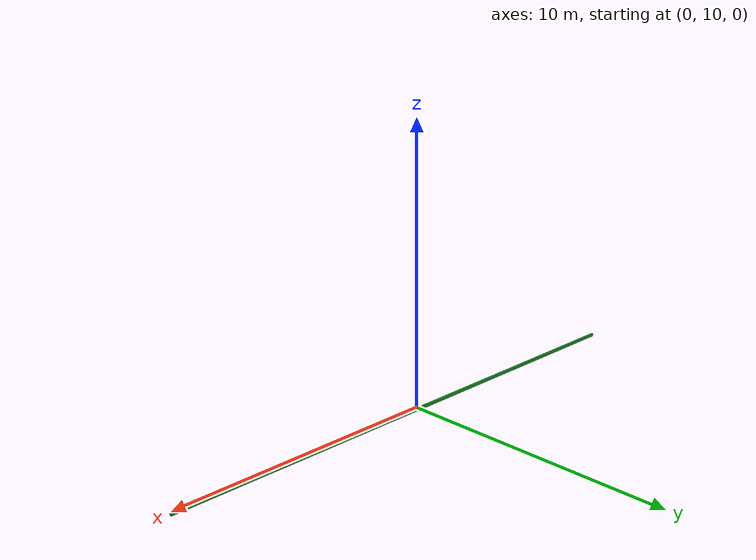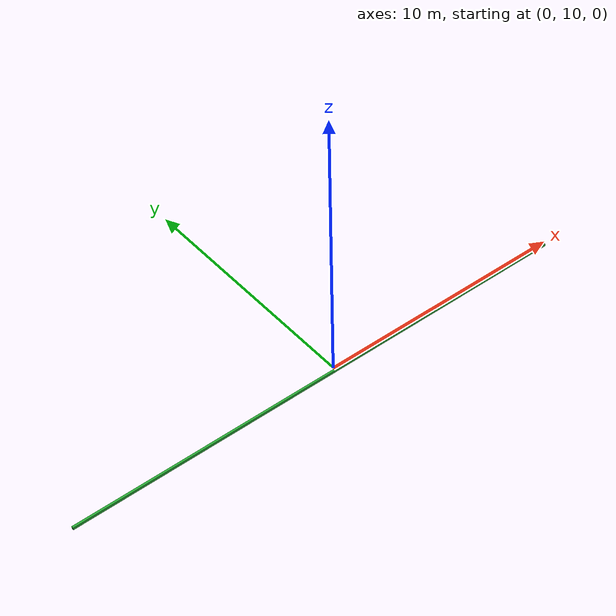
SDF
<?xml version="1.0" ?>
<sdf version="1.5">
  <model name="green_line">
   <pose> 0 9.96 -0.1 0 0 0 </pose>
    <static>true</static>
    <link name="link">
      <collision name="collision">
        <geometry>
          <box>
            <size>20 0.08 .1</size>
          </box>
        </geometry>
      </collision>
      <visual name="visual">
        <cast_shadows>false</cast_shadows>
        <geometry>
          <box>
            <size>20 0.08 0.101</size>
          </box>
        </geometry>
        <material>
          <script>
            <uri>model://green_line/materials/scripts</uri>
            <uri>model://green_line/materials/textures</uri>
            <name>vrc/green</name>
          </script>
        </material>
      </visual>
    </link>
  </model>
</sdf>
